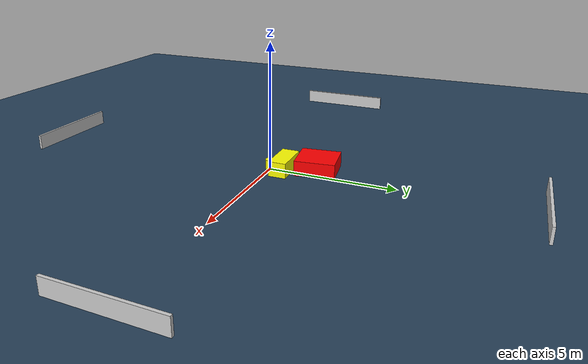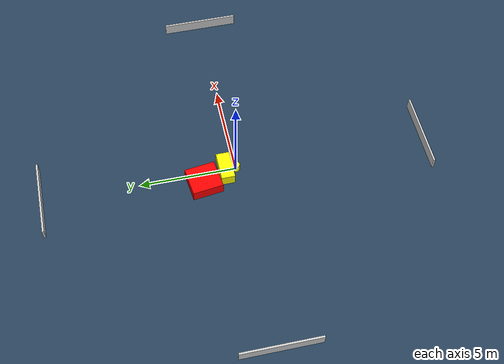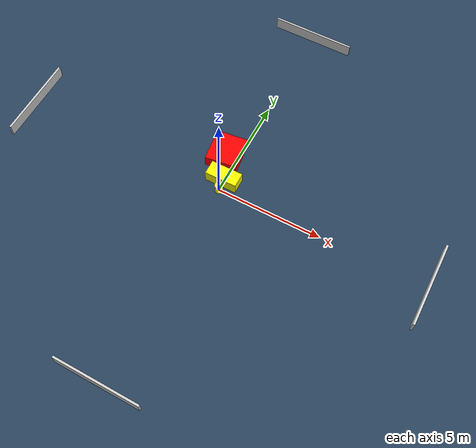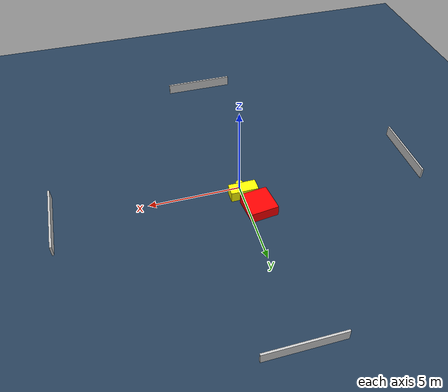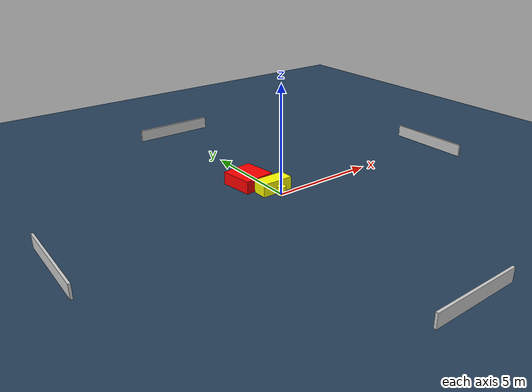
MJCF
<?xml version="1.0" ?>
<mujoco model="generated_environment">
  <option timestep="0.01" integrator="RK4" cone="elliptic"/>
  <default>
    <geom density="1"/>
  </default>
  <asset>
    <texture builtin="gradient" height="3072" name="skybox" rgb1="0.3 0.5 0.7" rgb2="0 0 0" type="skybox" width="512"/>
    <texture builtin="checker" height="300" name="groundplane" rgb1="0.2 0.3 0.4" rgb2="0.1 0.2 0.3" type="2d" width="300"/>
    <material name="groundplane" reflectance="0.2" texrepeat="5 5" texture="groundplane"/>
  </asset>
  <worldbody>
    <light dir="0 0 -1" directional="true" pos="0 0 1.5"/>
    <geom condim="3" friction="0.5 0.005 0.001" material="groundplane" name="floor" pos="0 0 0" size="0 0 0.05" type="plane"/>
    <body name="walls">
      <geom name="wall_1" condim="4" pos="-10.0 0.0 0.3" rgba="0.800000011920929 0.800000011920929 0.800000011920929 1.0" size="0.05 2.0 0.3" type="box"/>
      <geom name="wall_2" condim="4" pos="10.0 0.0 0.3" rgba="0.800000011920929 0.800000011920929 0.800000011920929 1.0" size="0.05 2.0 0.3" type="box"/>
      <geom name="wall_3" condim="4" pos="0.0 -10.0 0.3" rgba="0.800000011920929 0.800000011920929 0.800000011920929 1.0" size="2.0 0.05 0.3" type="box"/>
      <geom name="wall_4" condim="4" pos="0.0 10.0 0.3" rgba="0.800000011920929 0.800000011920929 0.800000011920929 1.0" size="2.0 0.05 0.3" type="box"/>
    </body>
    <body name="robot">
      <joint name="joint_x" type="slide" pos="0 0 0" axis="1 0 0"/>
      <joint name="joint_y" type="slide" pos="0 0 0" axis="0 1 0"/>
      <geom name="robot" type="cylinder" pos="0.0 0.0 0.2" size="0.2 0.2 0.0" mass="5.0" friction="1.0 0.005 0.0001" condim="4" rgba="1.0 1.0 0.0 1.0"/>
    </body>
    <body name="obstacle_1_movable">
      <geom name="obstacle_1_movable" condim="4" pos="-0.05256497659012926 0.5535740776663277 0.3" euler="0 0 90.64600608341229" friction="0.0 0.005 0.001" rgba="1.0 1.0 0.0 1.0" size="0.3518644047704691 0.7563778253877389 0.3" type="box" mass="0.1"/>
      <joint type="free"/>
    </body>
    <body name="obstacle_2_static">
      <geom name="obstacle_2_static" condim="4" pos="-0.5660378055960641 1.7734465313999037 0.3" euler="0 0 277.4101971576236" friction="0.0 0.005 0.001" rgba="1.0 0.0 0.0 1.0" size="0.7895472670348376 0.7461628297428629 0.3" type="box"/>
    </body>
  </worldbody>
  <actuator>
    <motor name="actuator_x" joint="joint_x" gear="1" ctrlrange="-1 1"/>
    <motor name="actuator_y" joint="joint_y" gear="1" ctrlrange="-1 1"/>
  </actuator>
</mujoco>
